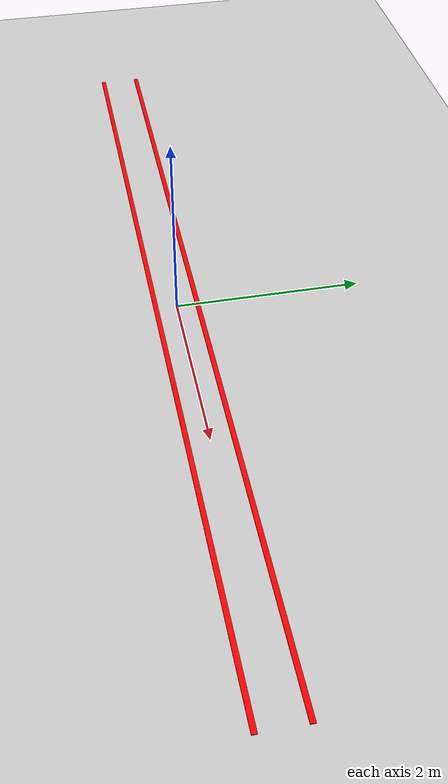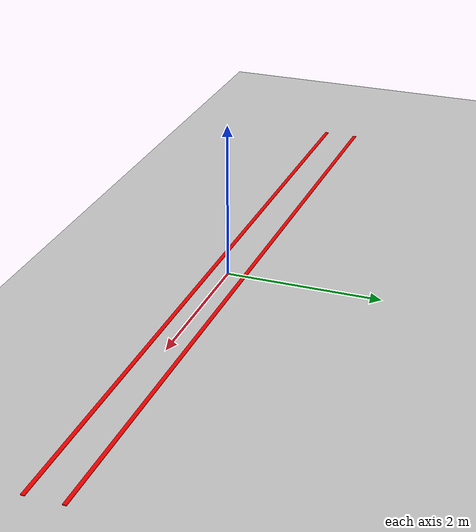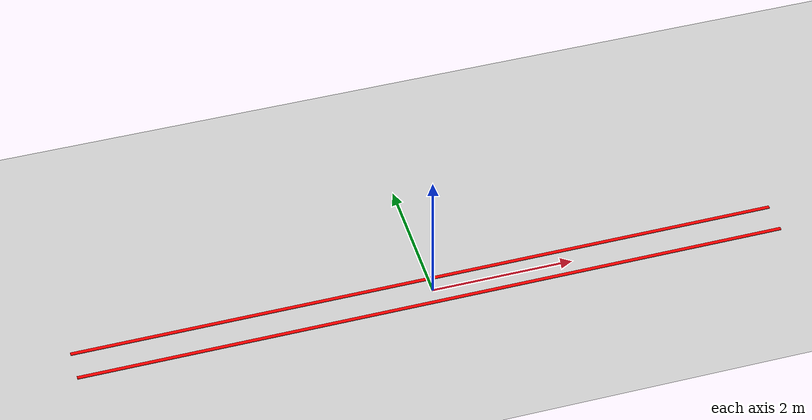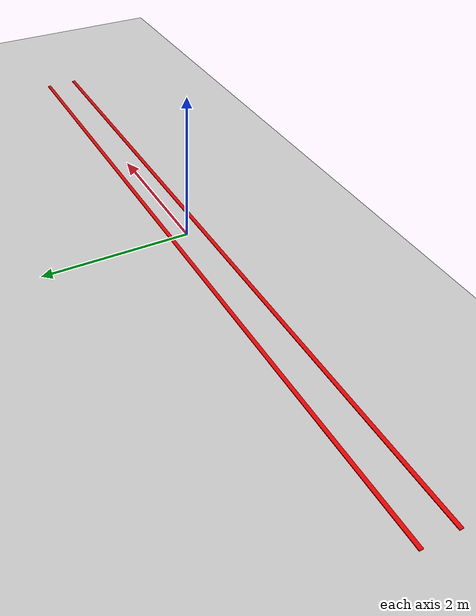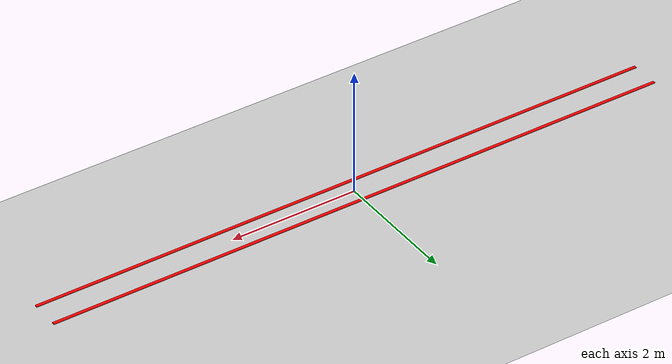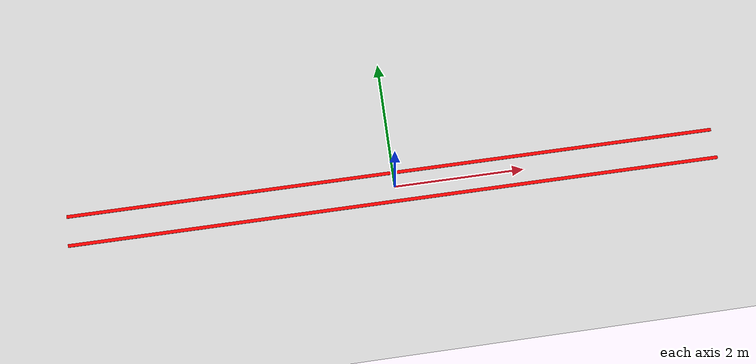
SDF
<?xml version="1.0" ?>
<sdf version="1.9">
  <world name="lane_world">
    <plugin filename="gz-sim-physics-system" name="gz::sim::systems::Physics"/>
    <plugin filename="gz-sim-user-commands-system" name="gz::sim::systems::UserCommands"/>
    <plugin filename="gz-sim-scene-broadcaster-system" name="gz::sim::systems::SceneBroadcaster"/>
    <plugin filename="gz-sim-sensors-system" name="gz::sim::systems::Sensors">
      <render_engine>ogre2</render_engine>
    </plugin>
    <physics type="ode">
      <max_step_size>0.004</max_step_size>
      <real_time_update_rate>250</real_time_update_rate>
    </physics>
    <scene>
      <shadows>false</shadows>
    </scene>
    <include>
      <uri>https://fuel.gazebosim.org/1.0/OpenRobotics/models/Sun</uri>
    </include>
    <model name="ground_plane">
      <static>true</static>
      <link name="link">
        <collision name="collision">
          <geometry><plane><normal>0 0 1</normal><size>50 50</size></plane></geometry>
        </collision>
        <visual name="visual">
          <geometry><plane><normal>0 0 1</normal><size>50 50</size></plane></geometry>
          <material><ambient>0.8 0.8 0.8 1</ambient><diffuse>0.8 0.8 0.8 1</diffuse></material>
        </visual>
      </link>
    </model>
    <model name="left_lane">
      <static>true</static>
      <pose>0 0.225 0.01 0 0 0</pose>
      <link name="link">
        <visual name="visual">
          <geometry><box><size>10 0.05 0.01</size></box></geometry>
          <material><ambient>1 0 0 1</ambient><diffuse>1 0 0 1</diffuse></material>
        </visual>
      </link>
    </model>
    <model name="right_lane">
      <static>true</static>
      <pose>0 -0.225 0.01 0 0 0</pose>
      <link name="link">
        <visual name="visual">
          <geometry><box><size>10 0.05 0.01</size></box></geometry>
          <material><ambient>1 0 0 1</ambient><diffuse>1 0 0 1</diffuse></material>
        </visual>
      </link>
    </model>
  </world>
</sdf>
